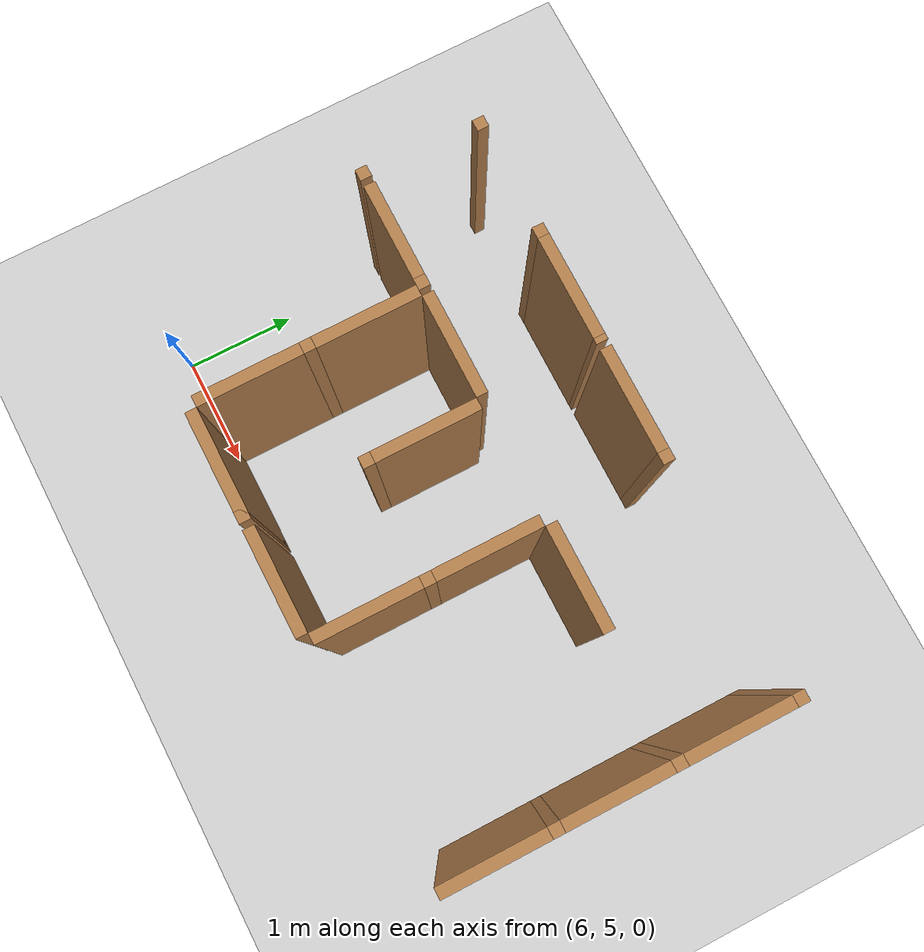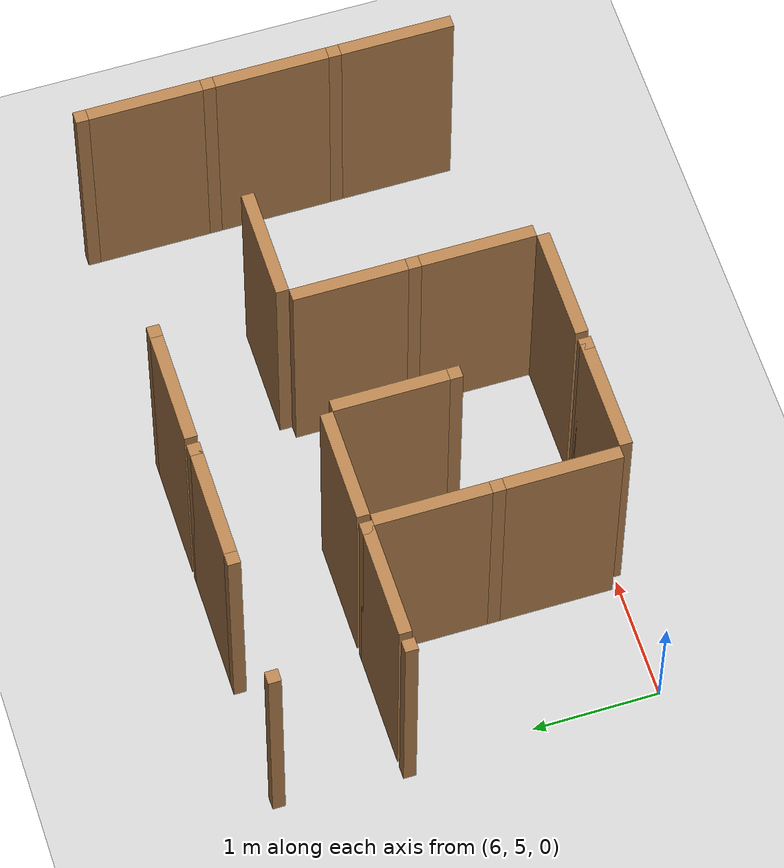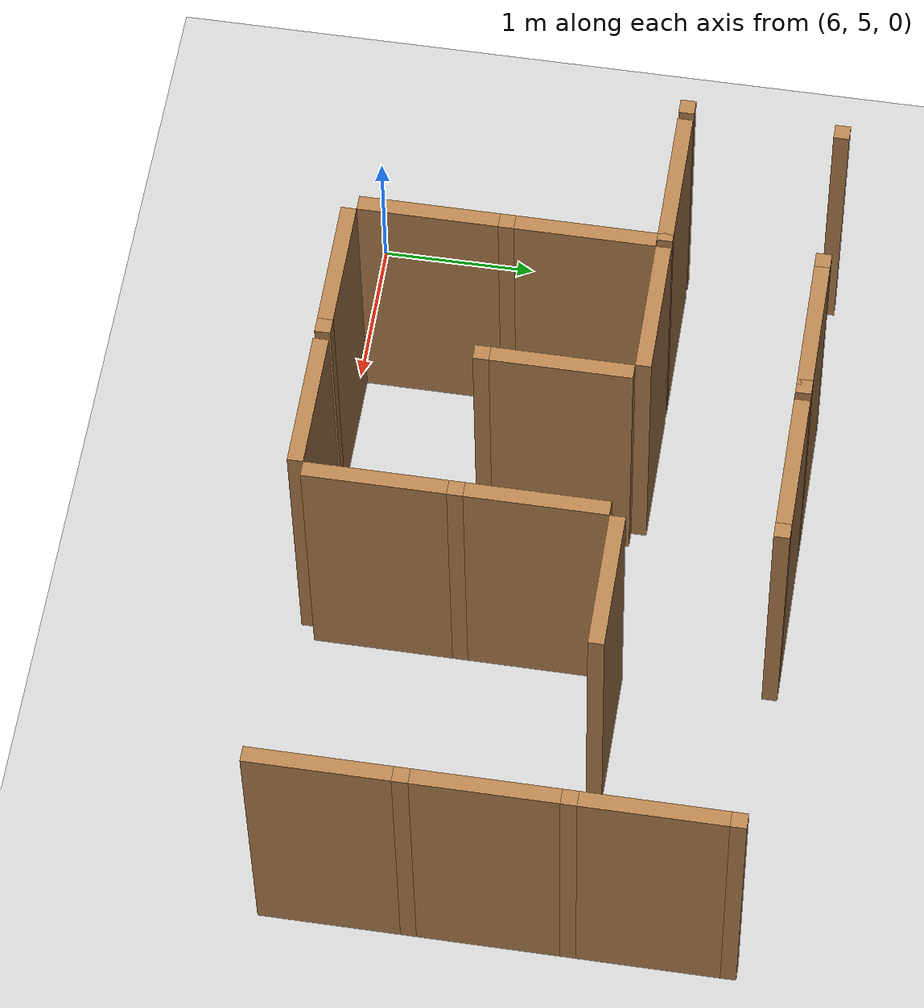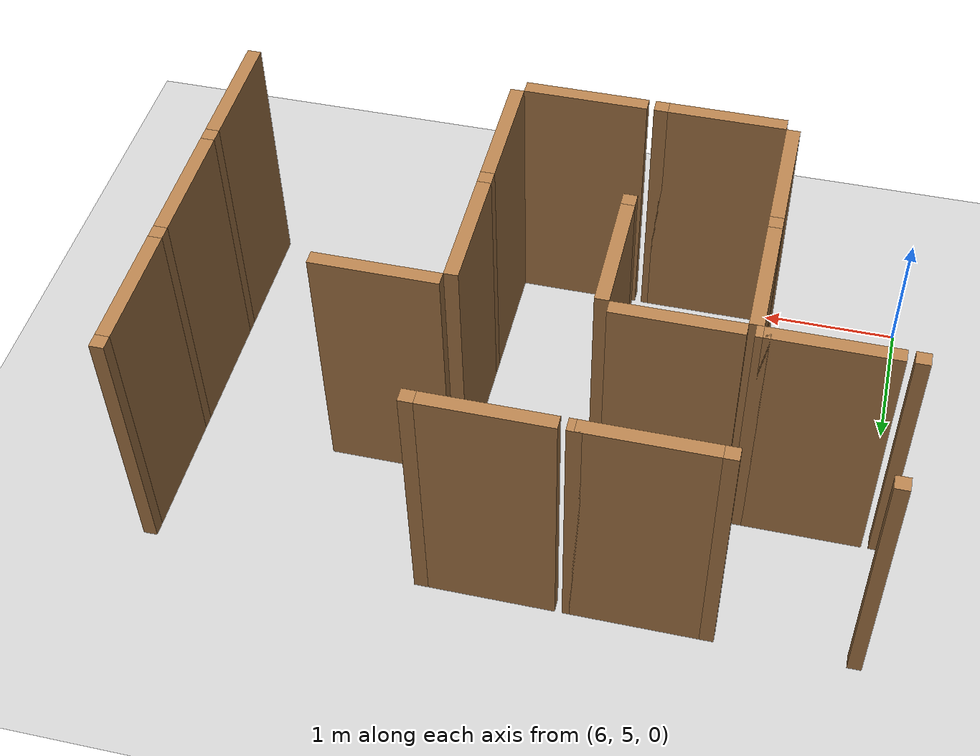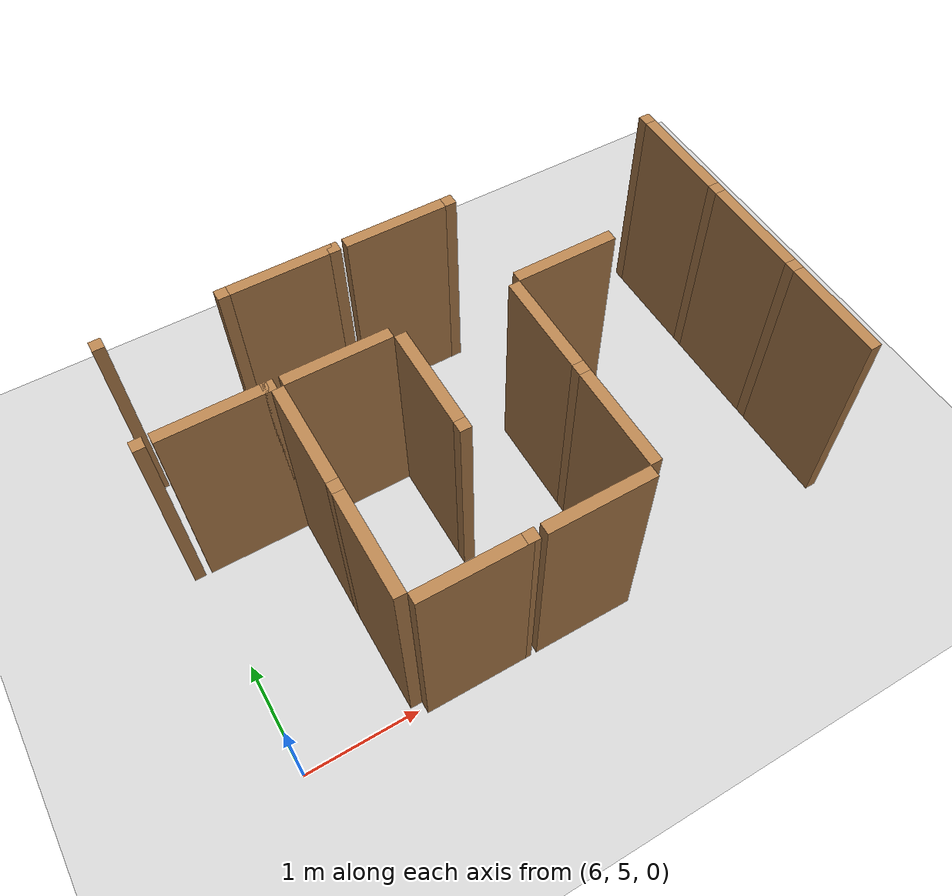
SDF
<sdf version="1.6">
 <world name="default">
  <include><uri>model://sun</uri></include>
  <model name="ground_plane">
   <static>true</static>
   <link name="link">
    <collision name="collision"><geometry><plane><size>12.0 12.0</size></plane></geometry></collision>
    <visual name="visual">
     <cast_shadows>false</cast_shadows>
     <geometry><plane><size>12.0 12.0</size></plane></geometry>
     <material>
      <script><uri>file://media/materials/scripts/gazebo.material</uri><name>Gazebo/Grey</name></script>
     </material>
    </visual>
   </link>
   <pose>6.0 6.0 0 0 0 0</pose>
  </model>
  <model name="vwall_5_7">
   <pose>7.0 5.5 1.0 0 0 0</pose>
   <link name="link">
    <collision name="collision"><geometry><box><size>0.1 0.9 2</size></box></geometry></collision>
    <visual name="visual">
     <geometry><box><size>0.1 0.9 2</size></box></geometry>
     <material>
      <script><uri>file://media/materials/scripts/gazebo.material</uri><name>Gazebo/Wood</name></script>
     </material>
    </visual>
   </link>
  </model>
  <model name="vwall_5_9">
   <pose>9.0 5.5 1.0 0 0 0</pose>
   <link name="link">
    <collision name="collision"><geometry><box><size>0.1 0.9 2</size></box></geometry></collision>
    <visual name="visual">
     <geometry><box><size>0.1 0.9 2</size></box></geometry>
     <material>
      <script><uri>file://media/materials/scripts/gazebo.material</uri><name>Gazebo/Wood</name></script>
     </material>
    </visual>
   </link>
  </model>
  <model name="vwall_5_11">
   <pose>11.0 5.5 1.0 0 0 0</pose>
   <link name="link">
    <collision name="collision"><geometry><box><size>0.1 0.9 2</size></box></geometry></collision>
    <visual name="visual">
     <geometry><box><size>0.1 0.9 2</size></box></geometry>
     <material>
      <script><uri>file://media/materials/scripts/gazebo.material</uri><name>Gazebo/Wood</name></script>
     </material>
    </visual>
   </link>
  </model>
  <model name="vwall_6_7">
   <pose>7.0 6.5 1.0 0 0 0</pose>
   <link name="link">
    <collision name="collision"><geometry><box><size>0.1 0.9 2</size></box></geometry></collision>
    <visual name="visual">
     <geometry><box><size>0.1 0.9 2</size></box></geometry>
     <material>
      <script><uri>file://media/materials/scripts/gazebo.material</uri><name>Gazebo/Wood</name></script>
     </material>
    </visual>
   </link>
  </model>
  <model name="joint_7.0_6.0">
   <pose>7.0 6.0 1.0 0 0 0</pose>
   <link name="link">
    <collision name="collision"><geometry><box><size>0.1 0.1 2</size></box></geometry></collision>
    <visual name="visual">
     <geometry><box><size>0.1 0.1 2</size></box></geometry>
     <material>
      <script><uri>file://media/materials/scripts/gazebo.material</uri><name>Gazebo/Wood</name></script>
     </material>
    </visual>
   </link>
  </model>
  <model name="vwall_6_8">
   <pose>8.0 6.5 1.0 0 0 0</pose>
   <link name="link">
    <collision name="collision"><geometry><box><size>0.1 0.9 2</size></box></geometry></collision>
    <visual name="visual">
     <geometry><box><size>0.1 0.9 2</size></box></geometry>
     <material>
      <script><uri>file://media/materials/scripts/gazebo.material</uri><name>Gazebo/Wood</name></script>
     </material>
    </visual>
   </link>
  </model>
  <model name="joint_8.0_6.0">
   <pose>8.0 6.0 1.0 0 0 0</pose>
   <link name="link">
    <collision name="collision"><geometry><box><size>0.1 0.1 2</size></box></geometry></collision>
    <visual name="visual">
     <geometry><box><size>0.1 0.1 2</size></box></geometry>
     <material>
      <script><uri>file://media/materials/scripts/gazebo.material</uri><name>Gazebo/Wood</name></script>
     </material>
    </visual>
   </link>
  </model>
  <model name="vwall_6_9">
   <pose>9.0 6.5 1.0 0 0 0</pose>
   <link name="link">
    <collision name="collision"><geometry><box><size>0.1 0.9 2</size></box></geometry></collision>
    <visual name="visual">
     <geometry><box><size>0.1 0.9 2</size></box></geometry>
     <material>
      <script><uri>file://media/materials/scripts/gazebo.material</uri><name>Gazebo/Wood</name></script>
     </material>
    </visual>
   </link>
  </model>
  <model name="joint_9.0_6.0">
   <pose>9.0 6.0 1.0 0 0 0</pose>
   <link name="link">
    <collision name="collision"><geometry><box><size>0.1 0.1 2</size></box></geometry></collision>
    <visual name="visual">
     <geometry><box><size>0.1 0.1 2</size></box></geometry>
     <material>
      <script><uri>file://media/materials/scripts/gazebo.material</uri><name>Gazebo/Wood</name></script>
     </material>
    </visual>
   </link>
  </model>
  <model name="vwall_6_11">
   <pose>11.0 6.5 1.0 0 0 0</pose>
   <link name="link">
    <collision name="collision"><geometry><box><size>0.1 0.9 2</size></box></geometry></collision>
    <visual name="visual">
     <geometry><box><size>0.1 0.9 2</size></box></geometry>
     <material>
      <script><uri>file://media/materials/scripts/gazebo.material</uri><name>Gazebo/Wood</name></script>
     </material>
    </visual>
   </link>
  </model>
  <model name="joint_11.0_6.0">
   <pose>11.0 6.0 1.0 0 0 0</pose>
   <link name="link">
    <collision name="collision"><geometry><box><size>0.1 0.1 2</size></box></geometry></collision>
    <visual name="visual">
     <geometry><box><size>0.1 0.1 2</size></box></geometry>
     <material>
      <script><uri>file://media/materials/scripts/gazebo.material</uri><name>Gazebo/Wood</name></script>
     </material>
    </visual>
   </link>
  </model>
  <model name="vwall_7_11">
   <pose>11.0 7.5 1.0 0 0 0</pose>
   <link name="link">
    <collision name="collision"><geometry><box><size>0.1 0.9 2</size></box></geometry></collision>
    <visual name="visual">
     <geometry><box><size>0.1 0.9 2</size></box></geometry>
     <material>
      <script><uri>file://media/materials/scripts/gazebo.material</uri><name>Gazebo/Wood</name></script>
     </material>
    </visual>
   </link>
  </model>
  <model name="joint_11.0_7.0">
   <pose>11.0 7.0 1.0 0 0 0</pose>
   <link name="link">
    <collision name="collision"><geometry><box><size>0.1 0.1 2</size></box></geometry></collision>
    <visual name="visual">
     <geometry><box><size>0.1 0.1 2</size></box></geometry>
     <material>
      <script><uri>file://media/materials/scripts/gazebo.material</uri><name>Gazebo/Wood</name></script>
     </material>
    </visual>
   </link>
  </model>
  <model name="joint_6.0_8.0">
   <pose>6.0 8.0 1.0 0 0 0</pose>
   <link name="link">
    <collision name="collision"><geometry><box><size>0.1 0.1 2</size></box></geometry></collision>
    <visual name="visual">
     <geometry><box><size>0.1 0.1 2</size></box></geometry>
     <material>
      <script><uri>file://media/materials/scripts/gazebo.material</uri><name>Gazebo/Wood</name></script>
     </material>
    </visual>
   </link>
  </model>
  <model name="joint_7.0_8.0">
   <pose>7.0 8.0 1.0 0 0 0</pose>
   <link name="link">
    <collision name="collision"><geometry><box><size>0.1 0.1 2</size></box></geometry></collision>
    <visual name="visual">
     <geometry><box><size>0.1 0.1 2</size></box></geometry>
     <material>
      <script><uri>file://media/materials/scripts/gazebo.material</uri><name>Gazebo/Wood</name></script>
     </material>
    </visual>
   </link>
  </model>
  <model name="joint_9.0_8.0">
   <pose>9.0 8.0 1.0 0 0 0</pose>
   <link name="link">
    <collision name="collision"><geometry><box><size>0.1 0.1 2</size></box></geometry></collision>
    <visual name="visual">
     <geometry><box><size>0.1 0.1 2</size></box></geometry>
     <material>
      <script><uri>file://media/materials/scripts/gazebo.material</uri><name>Gazebo/Wood</name></script>
     </material>
    </visual>
   </link>
  </model>
  <model name="joint_11.0_8.0">
   <pose>11.0 8.0 1.0 0 0 0</pose>
   <link name="link">
    <collision name="collision"><geometry><box><size>0.1 0.1 2</size></box></geometry></collision>
    <visual name="visual">
     <geometry><box><size>0.1 0.1 2</size></box></geometry>
     <material>
      <script><uri>file://media/materials/scripts/gazebo.material</uri><name>Gazebo/Wood</name></script>
     </material>
    </visual>
   </link>
  </model>
  <model name="hwall_5_7">
   <pose>7.5 5.0 1.0 0 0 0</pose>
   <link name="link">
    <collision name="collision"><geometry><box><size>0.9 0.1 2</size></box></geometry></collision>
    <visual name="visual">
     <geometry><box><size>0.9 0.1 2</size></box></geometry>
     <material>
      <script><uri>file://media/materials/scripts/gazebo.material</uri><name>Gazebo/Wood</name></script>
     </material>
    </visual>
   </link>
  </model>
  <model name="joint_7.95_5.0">
   <pose>7.95 5.0 1.0 0 0 0</pose>
   <link name="link">
    <collision name="collision"><geometry><box><size>0.1 0.1 2</size></box></geometry></collision>
    <visual name="visual">
     <geometry><box><size>0.1 0.1 2</size></box></geometry>
     <material>
      <script><uri>file://media/materials/scripts/gazebo.material</uri><name>Gazebo/Wood</name></script>
     </material>
    </visual>
   </link>
  </model>
  <model name="hwall_5_8">
   <pose>8.5 5.0 1.0 0 0 0</pose>
   <link name="link">
    <collision name="collision"><geometry><box><size>0.9 0.1 2</size></box></geometry></collision>
    <visual name="visual">
     <geometry><box><size>0.9 0.1 2</size></box></geometry>
     <material>
      <script><uri>file://media/materials/scripts/gazebo.material</uri><name>Gazebo/Wood</name></script>
     </material>
    </visual>
   </link>
  </model>
  <model name="joint_5.95_7.0">
   <pose>5.95 7.0 1.0 0 0 0</pose>
   <link name="link">
    <collision name="collision"><geometry><box><size>0.1 0.1 2</size></box></geometry></collision>
    <visual name="visual">
     <geometry><box><size>0.1 0.1 2</size></box></geometry>
     <material>
      <script><uri>file://media/materials/scripts/gazebo.material</uri><name>Gazebo/Wood</name></script>
     </material>
    </visual>
   </link>
  </model>
  <model name="hwall_7_6">
   <pose>6.5 7.0 1.0 0 0 0</pose>
   <link name="link">
    <collision name="collision"><geometry><box><size>0.9 0.1 2</size></box></geometry></collision>
    <visual name="visual">
     <geometry><box><size>0.9 0.1 2</size></box></geometry>
     <material>
      <script><uri>file://media/materials/scripts/gazebo.material</uri><name>Gazebo/Wood</name></script>
     </material>
    </visual>
   </link>
  </model>
  <model name="joint_6.95_7.0">
   <pose>6.95 7.0 1.0 0 0 0</pose>
   <link name="link">
    <collision name="collision"><geometry><box><size>0.1 0.1 2</size></box></geometry></collision>
    <visual name="visual">
     <geometry><box><size>0.1 0.1 2</size></box></geometry>
     <material>
      <script><uri>file://media/materials/scripts/gazebo.material</uri><name>Gazebo/Wood</name></script>
     </material>
    </visual>
   </link>
  </model>
  <model name="hwall_7_7">
   <pose>7.5 7.0 1.0 0 0 0</pose>
   <link name="link">
    <collision name="collision"><geometry><box><size>0.9 0.1 2</size></box></geometry></collision>
    <visual name="visual">
     <geometry><box><size>0.9 0.1 2</size></box></geometry>
     <material>
      <script><uri>file://media/materials/scripts/gazebo.material</uri><name>Gazebo/Wood</name></script>
     </material>
    </visual>
   </link>
  </model>
  <model name="hwall_7_9">
   <pose>9.5 7.0 1.0 0 0 0</pose>
   <link name="link">
    <collision name="collision"><geometry><box><size>0.9 0.1 2</size></box></geometry></collision>
    <visual name="visual">
     <geometry><box><size>0.9 0.1 2</size></box></geometry>
     <material>
      <script><uri>file://media/materials/scripts/gazebo.material</uri><name>Gazebo/Wood</name></script>
     </material>
    </visual>
   </link>
  </model>
  <model name="hwall_8_7">
   <pose>7.5 8.0 1.0 0 0 0</pose>
   <link name="link">
    <collision name="collision"><geometry><box><size>0.9 0.1 2</size></box></geometry></collision>
    <visual name="visual">
     <geometry><box><size>0.9 0.1 2</size></box></geometry>
     <material>
      <script><uri>file://media/materials/scripts/gazebo.material</uri><name>Gazebo/Wood</name></script>
     </material>
    </visual>
   </link>
  </model>
  <model name="joint_7.95_8.0">
   <pose>7.95 8.0 1.0 0 0 0</pose>
   <link name="link">
    <collision name="collision"><geometry><box><size>0.1 0.1 2</size></box></geometry></collision>
    <visual name="visual">
     <geometry><box><size>0.1 0.1 2</size></box></geometry>
     <material>
      <script><uri>file://media/materials/scripts/gazebo.material</uri><name>Gazebo/Wood</name></script>
     </material>
    </visual>
   </link>
  </model>
  <model name="hwall_8_8">
   <pose>8.5 8.0 1.0 0 0 0</pose>
   <link name="link">
    <collision name="collision"><geometry><box><size>0.9 0.1 2</size></box></geometry></collision>
    <visual name="visual">
     <geometry><box><size>0.9 0.1 2</size></box></geometry>
     <material>
      <script><uri>file://media/materials/scripts/gazebo.material</uri><name>Gazebo/Wood</name></script>
     </material>
    </visual>
   </link>
  </model>
 </world>
</sdf>
